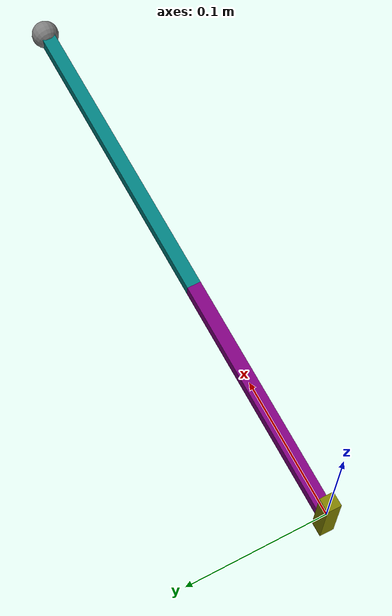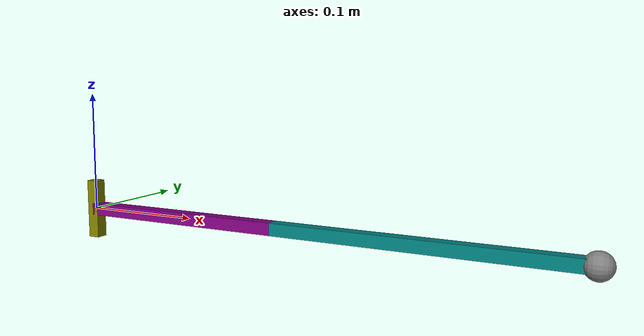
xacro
<?xml version="1.0"?>
<robot xmlns:xacro="http://www.ros.org/wiki/xacro" name="me212bot">

<xacro:property name="link1_length" value="0.1778" />
<xacro:property name="link2_length" value="0.235" />
<xacro:property name="M_PI" value="3.1415926" />

<link name="arm_base">
    <visual>
        <geometry>
            <box size="0.01 0.01 0.05" />
        </geometry>
        <origin rpy="0 0 0" xyz="0 0 0"/>
        <material name="color1">
            <color rgba="0.5 0.5 0.0 1"/>
        </material>
    </visual>
</link>

<link name="link1">
    <visual>
        <geometry>
            <box size="0.01 0.01 ${link1_length}" />
        </geometry>
        <origin rpy="0 0 0" xyz="0 0 ${link1_length/2}"/>
        <material name="color2">
            <color rgba="0.5 0.0 0.5 1"/>
        </material>
    </visual>
</link>

<link name="link2">
    <visual>
        <geometry>
            <box size="0.01 0.01 ${link2_length}" />
        </geometry>
        <origin rpy="0 0 0" xyz="0 0 ${link2_length/2}"/>
        <material name="color3">
            <color rgba="0.0 0.5 0.5 1"/>
        </material>
    </visual>
</link>

<link name="tcp">
    <visual>
        <geometry>
            <sphere radius="0.01" />
        </geometry>
        <origin rpy="0 0 0" xyz="0 0 0"/>
        <material name="color4">
            <color rgba="0.5 0.5 0.5 1"/>
        </material>
    </visual>
</link>

<joint name="joint1" type="revolute">
    <parent link="arm_base"/>
    <child link="link1"/>
    <origin xyz="0 0 0" rpy="0 ${-M_PI/2} ${M_PI}"/>
    <limit effort="300" lower="${-M_PI}" upper="${M_PI/2}" velocity="7.33"/>
    <axis xyz="0 -1 0"/>
</joint>

<joint name="joint2" type="revolute">
    <parent link="link1"/>
    <child link="link2"/>
    <origin xyz="0 0 ${link1_length}" />
    <limit effort="300" lower="${-M_PI}" upper="${M_PI}" velocity="7.33"/>
    <axis xyz="0 -1 0"/>
</joint>

<joint name="joint3" type="fixed">
    <parent link="link2"/>
    <child link="tcp"/>
    <origin xyz="0 0 ${link2_length}" />
</joint>

</robot>
